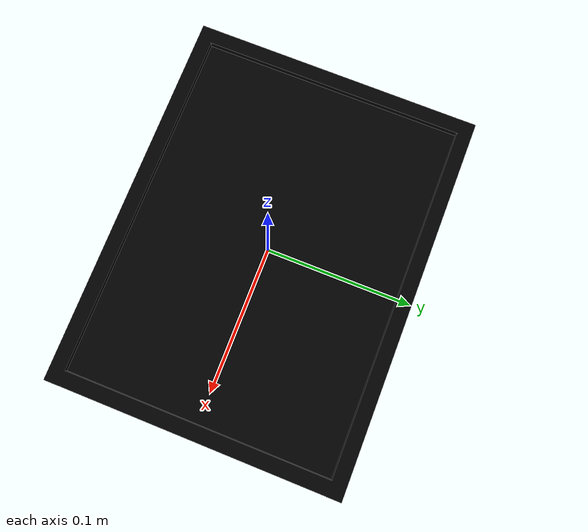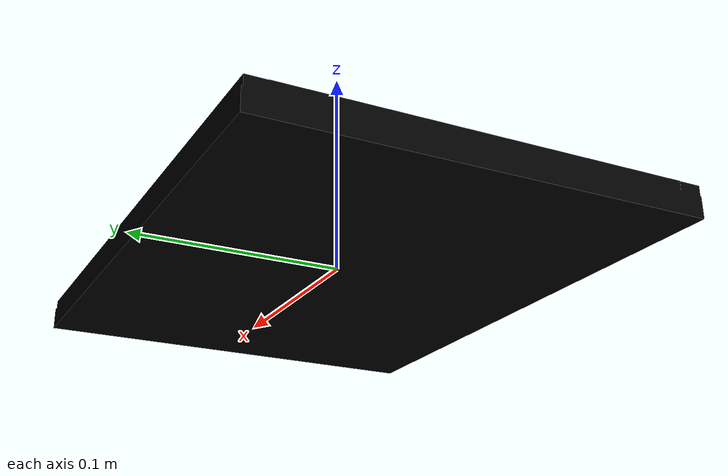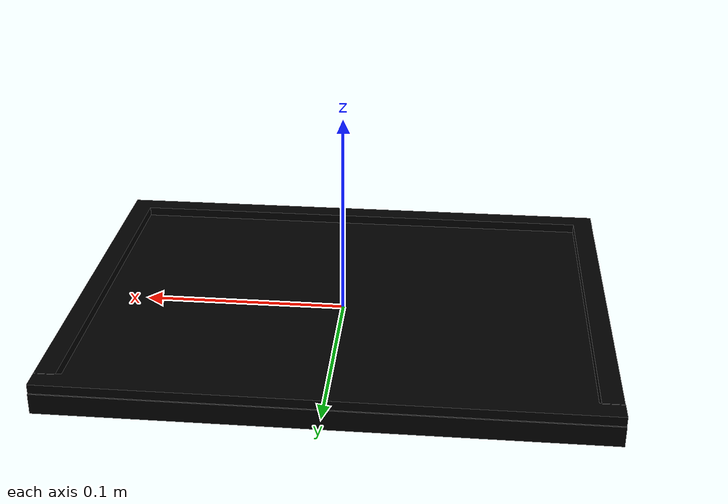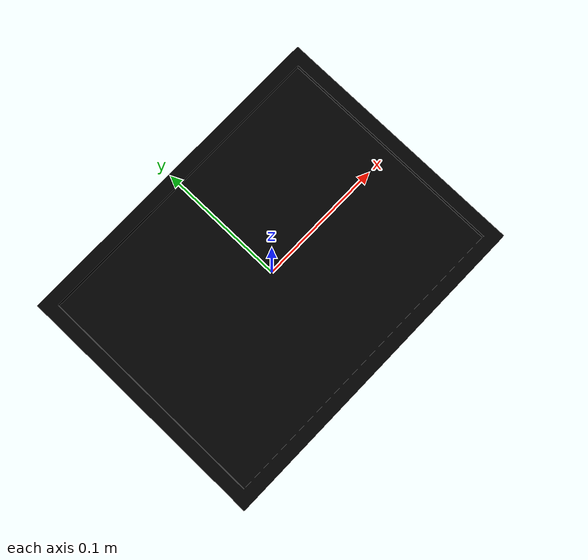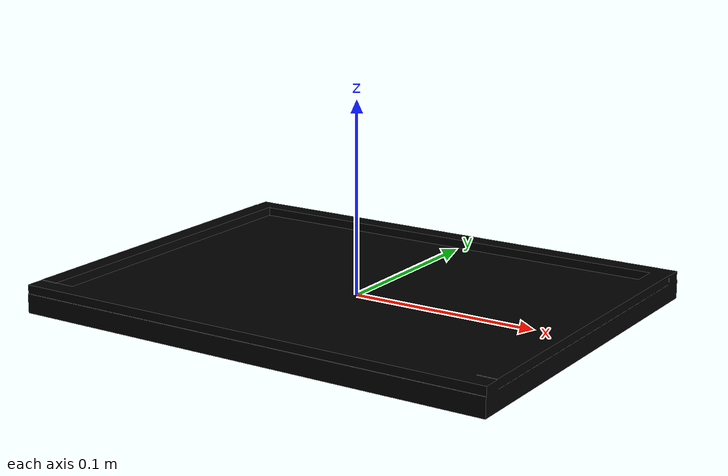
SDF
<?xml version="1.0"?>
<sdf version="1.9">
  <model name="sausage_tray">
    <static>true</static>
    <link name="sausage_tray_link">
      <inertial>
        <mass>0.250000</mass>
        <inertia>
          <ixx>0.000250000</ixx>
          <iyy>0.000250000</iyy>
          <izz>0.000250000</izz>
          <ixy>0</ixy>
          <ixz>0</ixz>
          <iyz>0</iyz>
        </inertia>
      </inertial>
      <visual name="sausage_tray_visual">
        <geometry>
          <mesh>
            <uri>meshes/sausage_tray.obj</uri>
          </mesh>
        </geometry>
        <material>
          <ambient>0.000000 0.000000 0.000000 1.000000</ambient>
          <diffuse>0.000000 0.000000 0.000000 1.000000</diffuse>
          <specular>0.120000 0.120000 0.120000 1.000000</specular>
        </material>
      </visual>
      <collision name="sausage_tray_tray_backward_001_collision">
        <pose>0.124910742 0.000060976 0.006773353 0 0 0</pose>
        <geometry>
          <box>
            <size>0.009999998 0.180000007 0.004999999</size>
          </box>
        </geometry>
        <max_contacts>20</max_contacts>
        <surface>
          <friction>
            <ode>
              <mu>8.0</mu>
              <mu2>8.0</mu2>
              <slip1>0.0</slip1>
              <slip2>0.0</slip2>
            </ode>
            <torsional>
              <coefficient>1.0</coefficient>
              <use_patch_radius>true</use_patch_radius>
              <patch_radius>0.020000</patch_radius>
              <surface_radius>0.010000</surface_radius>
              <ode>
                <slip>0.0</slip>
              </ode>
            </torsional>
          </friction>
          <contact>
            <ode>
              <soft_cfm>0.000000</soft_cfm>
              <soft_erp>0.800000</soft_erp>
              <kp>1000000.000000</kp>
              <kd>100.000000</kd>
              <max_vel>0.010000</max_vel>
              <min_depth>0.002000</min_depth>
            </ode>
          </contact>
        </surface>
      </collision>
      <collision name="sausage_tray_tray_bottom_001_collision">
        <pose>0.000009209 0.000060976 -0.000502974 0 0 0</pose>
        <geometry>
          <box>
            <size>0.259999990 0.200000003 0.010000000</size>
          </box>
        </geometry>
        <max_contacts>20</max_contacts>
        <surface>
          <friction>
            <ode>
              <mu>8.0</mu>
              <mu2>8.0</mu2>
              <slip1>0.0</slip1>
              <slip2>0.0</slip2>
            </ode>
            <torsional>
              <coefficient>1.0</coefficient>
              <use_patch_radius>true</use_patch_radius>
              <patch_radius>0.020000</patch_radius>
              <surface_radius>0.010000</surface_radius>
              <ode>
                <slip>0.0</slip>
              </ode>
            </torsional>
          </friction>
          <contact>
            <ode>
              <soft_cfm>0.000000</soft_cfm>
              <soft_erp>0.800000</soft_erp>
              <kp>1000000.000000</kp>
              <kd>100.000000</kd>
              <max_vel>0.010000</max_vel>
              <min_depth>0.002000</min_depth>
            </ode>
          </contact>
        </surface>
      </collision>
      <collision name="sausage_tray_tray_forward_001_collision">
        <pose>-0.124848291 0.000060976 0.006773353 0 0 0</pose>
        <geometry>
          <box>
            <size>0.009999998 0.180000007 0.004999999</size>
          </box>
        </geometry>
        <max_contacts>20</max_contacts>
        <surface>
          <friction>
            <ode>
              <mu>8.0</mu>
              <mu2>8.0</mu2>
              <slip1>0.0</slip1>
              <slip2>0.0</slip2>
            </ode>
            <torsional>
              <coefficient>1.0</coefficient>
              <use_patch_radius>true</use_patch_radius>
              <patch_radius>0.020000</patch_radius>
              <surface_radius>0.010000</surface_radius>
              <ode>
                <slip>0.0</slip>
              </ode>
            </torsional>
          </friction>
          <contact>
            <ode>
              <soft_cfm>0.000000</soft_cfm>
              <soft_erp>0.800000</soft_erp>
              <kp>1000000.000000</kp>
              <kd>100.000000</kd>
              <max_vel>0.010000</max_vel>
              <min_depth>0.002000</min_depth>
            </ode>
          </contact>
        </surface>
      </collision>
      <collision name="sausage_tray_tray_left_001_collision">
        <pose>0.000009209 0.094440848 0.006573379 0 0 0</pose>
        <geometry>
          <box>
            <size>0.259999990 0.010000005 0.004999999</size>
          </box>
        </geometry>
        <max_contacts>20</max_contacts>
        <surface>
          <friction>
            <ode>
              <mu>8.0</mu>
              <mu2>8.0</mu2>
              <slip1>0.0</slip1>
              <slip2>0.0</slip2>
            </ode>
            <torsional>
              <coefficient>1.0</coefficient>
              <use_patch_radius>true</use_patch_radius>
              <patch_radius>0.020000</patch_radius>
              <surface_radius>0.010000</surface_radius>
              <ode>
                <slip>0.0</slip>
              </ode>
            </torsional>
          </friction>
          <contact>
            <ode>
              <soft_cfm>0.000000</soft_cfm>
              <soft_erp>0.800000</soft_erp>
              <kp>1000000.000000</kp>
              <kd>100.000000</kd>
              <max_vel>0.010000</max_vel>
              <min_depth>0.002000</min_depth>
            </ode>
          </contact>
        </surface>
      </collision>
      <collision name="sausage_tray_tray_right_001_collision">
        <pose>0.000009209 -0.094518930 0.006573379 0 0 0</pose>
        <geometry>
          <box>
            <size>0.259999990 0.010000005 0.004999999</size>
          </box>
        </geometry>
        <max_contacts>20</max_contacts>
        <surface>
          <friction>
            <ode>
              <mu>8.0</mu>
              <mu2>8.0</mu2>
              <slip1>0.0</slip1>
              <slip2>0.0</slip2>
            </ode>
            <torsional>
              <coefficient>1.0</coefficient>
              <use_patch_radius>true</use_patch_radius>
              <patch_radius>0.020000</patch_radius>
              <surface_radius>0.010000</surface_radius>
              <ode>
                <slip>0.0</slip>
              </ode>
            </torsional>
          </friction>
          <contact>
            <ode>
              <soft_cfm>0.000000</soft_cfm>
              <soft_erp>0.800000</soft_erp>
              <kp>1000000.000000</kp>
              <kd>100.000000</kd>
              <max_vel>0.010000</max_vel>
              <min_depth>0.002000</min_depth>
            </ode>
          </contact>
        </surface>
      </collision>
    </link>
  </model>
</sdf>
